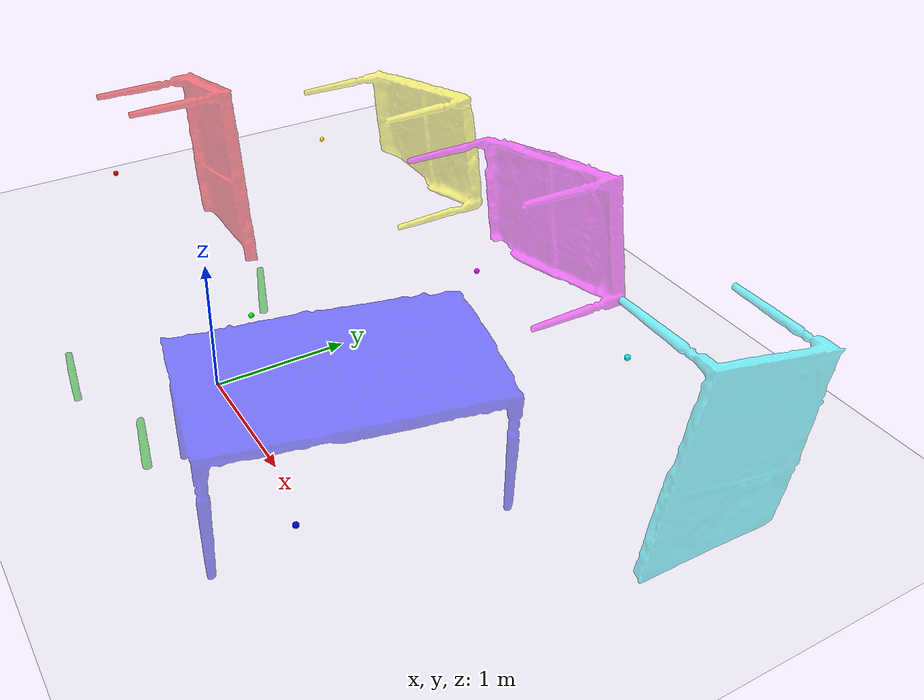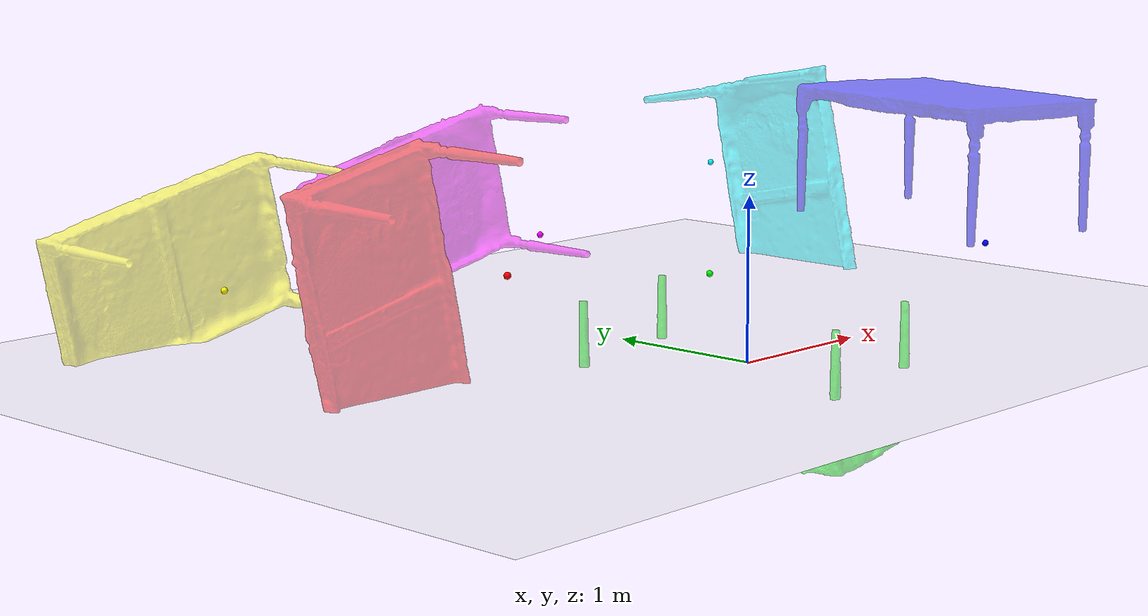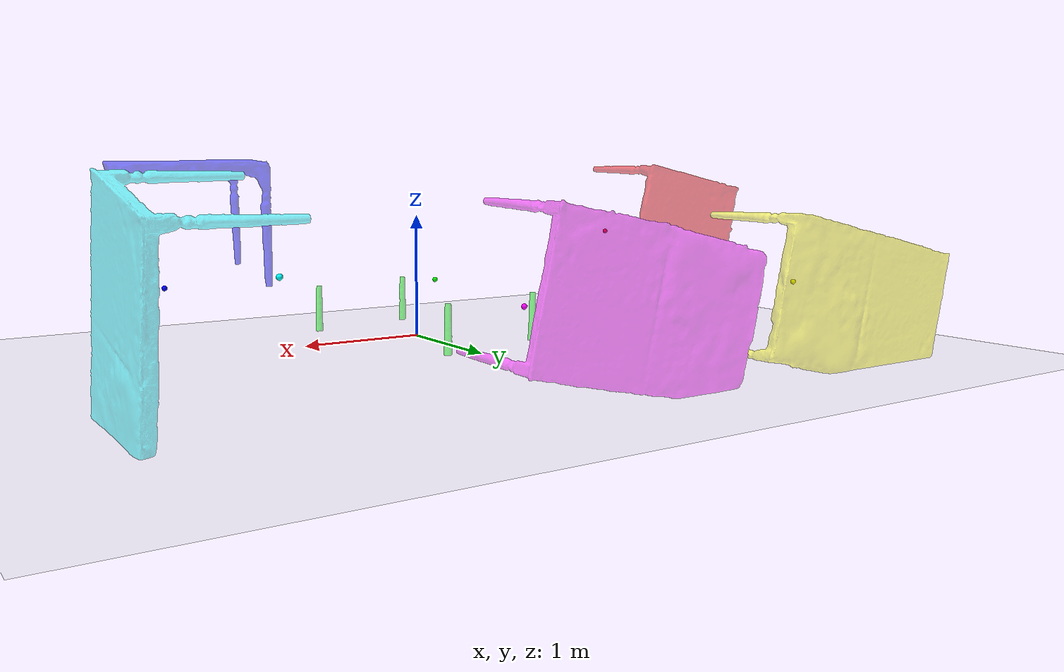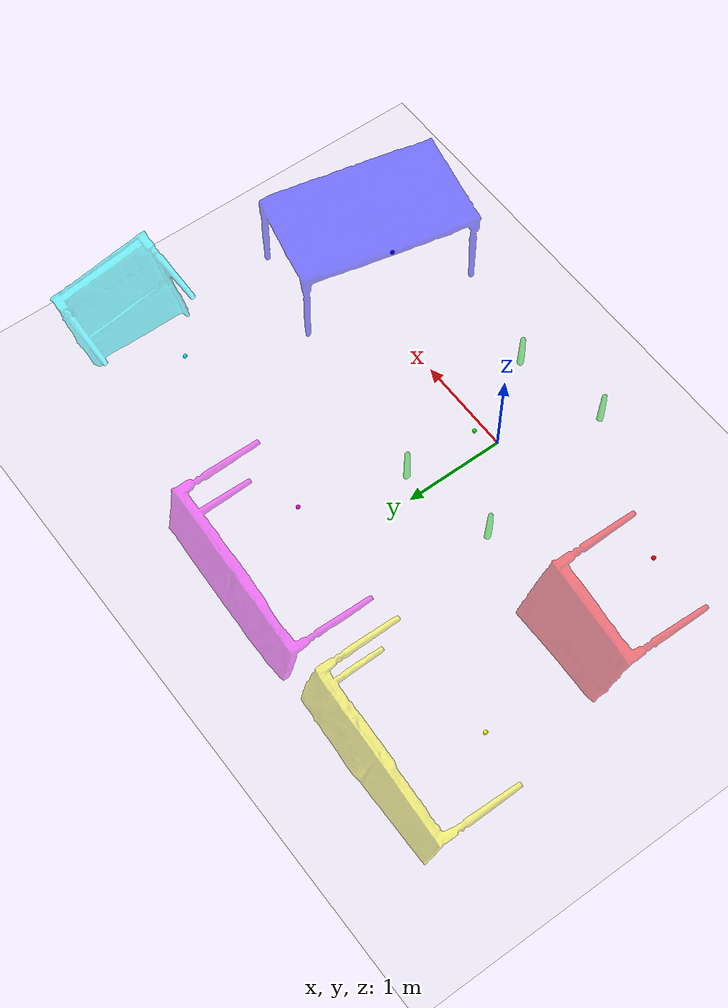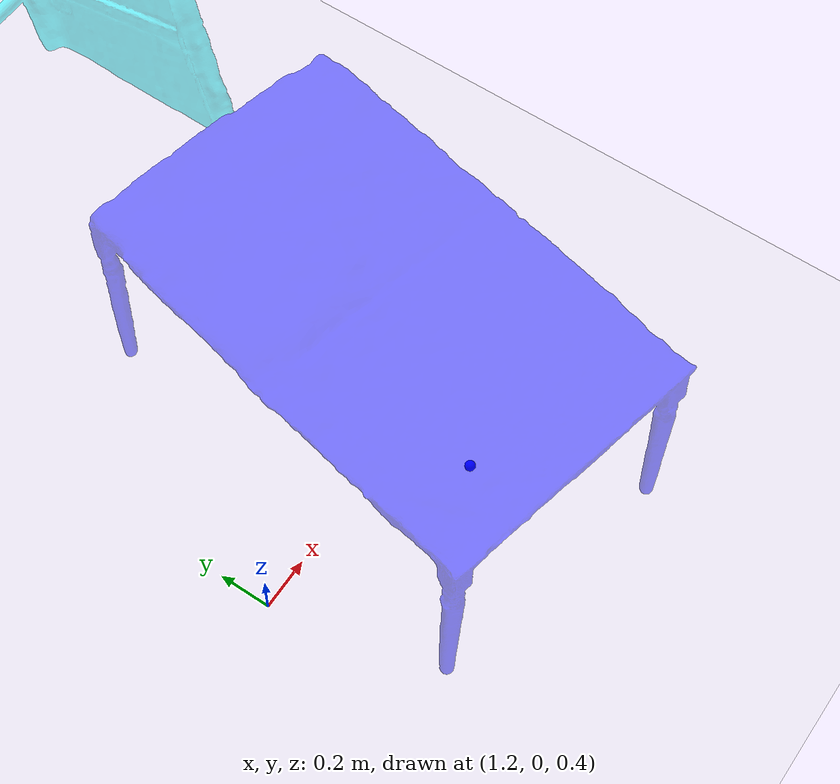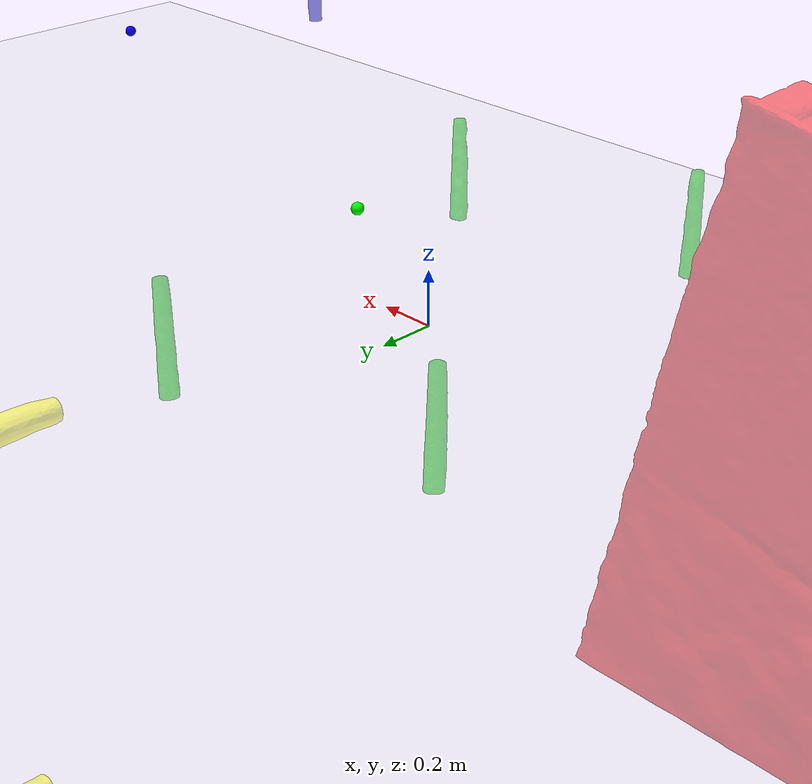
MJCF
<?xml version="1.0"?>
<!--
Test different rotations to find correct orientation
View this with: python3 scripts/view_scene.py scenes/test_rotations.xml
-->
<mujoco model="rotation_test">
  <compiler angle="radian" meshdir="scans"/>

  <asset>
    <mesh name="table_scan" file="table.obj" scale="1.5 1.5 1.5"/>
  </asset>

  <worldbody>
    <geom name="floor" type="plane" size="5 5 0.01" rgba="0.9 0.9 0.9 1"/>
    <light pos="0 0 3" dir="0 0 -1"/>
    <light pos="2 2 3" dir="-1 -1 -1"/>

    <!-- TEST 1: No rotation (as-is from OBJ) -->
    <body name="test1_none" pos="-2 0 0.5">
      <geom type="mesh" mesh="table_scan" rgba="1 0 0 0.5"/>
      <site name="label1" pos="0 0 0.3" size="0.02" rgba="1 0 0 1"/>
    </body>

    <!-- TEST 2: -90° around X (Y-up → Z-up standard) -->
    <body name="test2_negX90" pos="0 0 0.5" euler="-1.5708 0 0">
      <geom type="mesh" mesh="table_scan" rgba="0 1 0 0.5"/>
      <site name="label2" pos="0 0 0.3" size="0.02" rgba="0 1 0 1"/>
    </body>

    <!-- TEST 3: +90° around X (opposite direction) -->
    <body name="test3_posX90" pos="2 0 0.5" euler="1.5708 0 0">
      <geom type="mesh" mesh="table_scan" rgba="0 0 1 0.5"/>
      <site name="label3" pos="0 0 0.3" size="0.02" rgba="0 0 1 1"/>
    </body>

    <!-- TEST 4: -90° around Y -->
    <body name="test4_negY90" pos="-2 2 0.5" euler="0 -1.5708 0">
      <geom type="mesh" mesh="table_scan" rgba="1 1 0 0.5"/>
      <site name="label4" pos="0 0 0.3" size="0.02" rgba="1 1 0 1"/>
    </body>

    <!-- TEST 5: +90° around Y -->
    <body name="test5_posY90" pos="0 2 0.5" euler="0 1.5708 0">
      <geom type="mesh" mesh="table_scan" rgba="1 0 1 0.5"/>
      <site name="label5" pos="0 0 0.3" size="0.02" rgba="1 0 1 1"/>
    </body>

    <!-- TEST 6: -90° around Z -->
    <body name="test6_negZ90" pos="2 2 0.5" euler="0 0 -1.5708">
      <geom type="mesh" mesh="table_scan" rgba="0 1 1 0.5"/>
      <site name="label6" pos="0 0 0.3" size="0.02" rgba="0 1 1 1"/>
    </body>
  </worldbody>
</mujoco>
